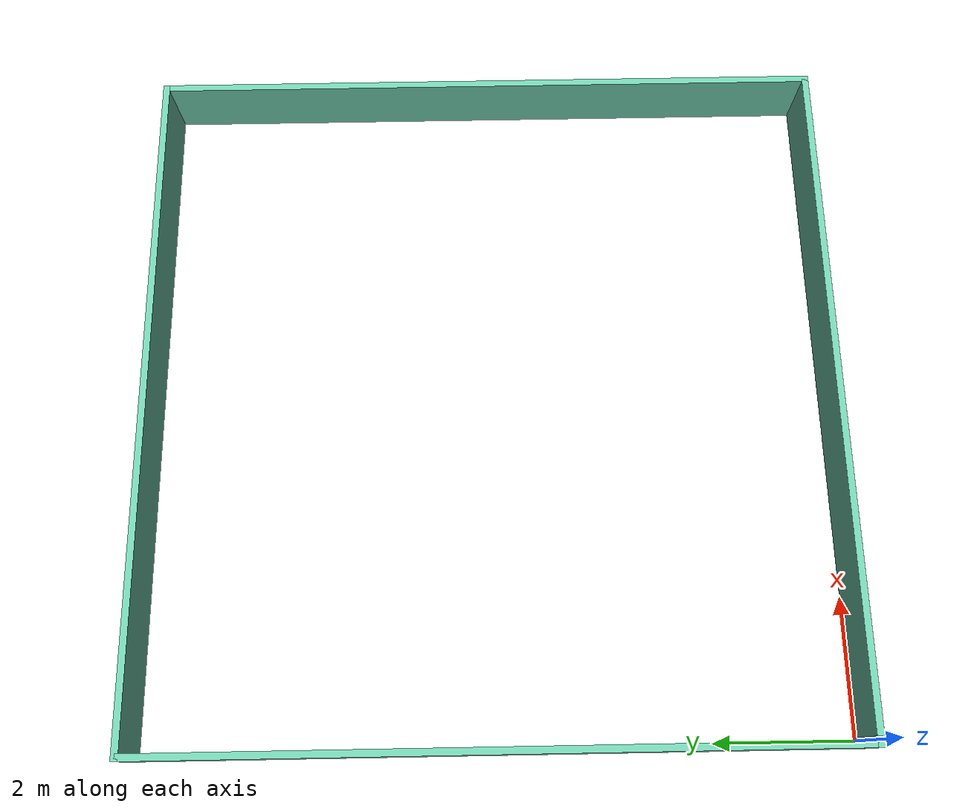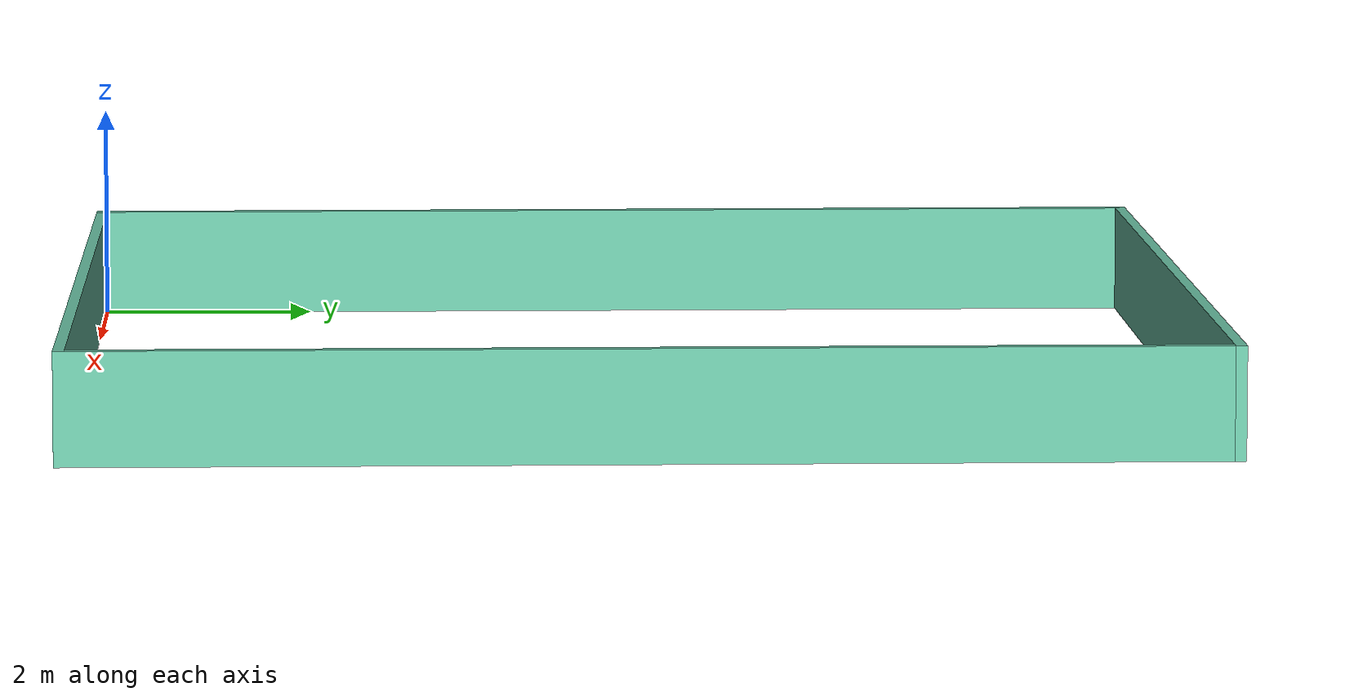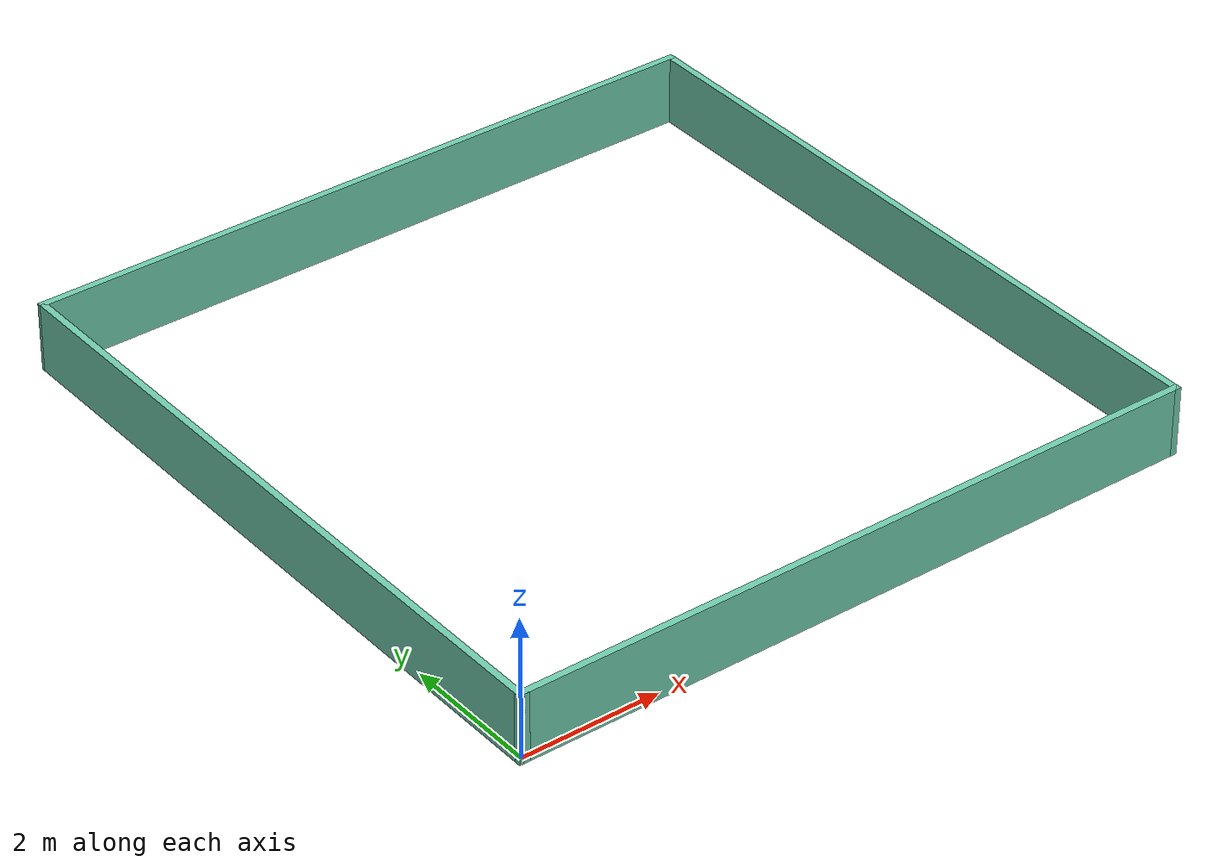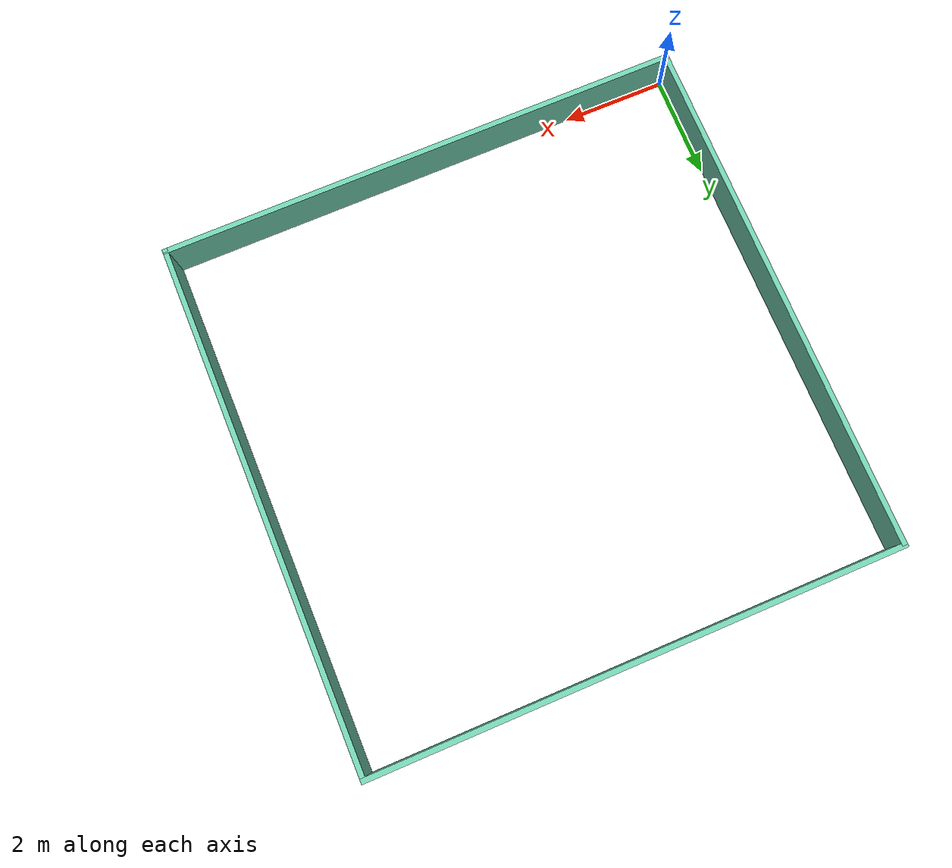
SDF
<?xml version='1.0'?>
<sdf version='1.7'>
  <model name='walls'>
    <pose>5 5 0 0 -0 0</pose>
    <link name='Wall_18'>
      <collision name='Wall_18_Collision'>
        <geometry>
          <box>
            <size>10.15 0.1 1</size>
          </box>
        </geometry>
        <pose>0 0 0.5 0 -0 0</pose>
      </collision>
      <visual name='Wall_18_Visual'>
        <pose>0 0 0.5 0 -0 0</pose>
        <geometry>
          <box>
            <size>10.15 0.1 1</size>
          </box>
        </geometry>
        <material>
          <script>
            <uri>file://media/materials/scripts/gazebo.material</uri>
            <name>Gazebo/Grey</name>
          </script>
          <ambient>0.435294 0.796078 0.67451 1</ambient>
        </material>
        <meta>
          <layer>0</layer>
        </meta>
      </visual>
      <pose>-5.05 -0.025 0 0 -0 1.5708</pose>
    </link>
    <link name='Wall_20'>
      <collision name='Wall_20_Collision'>
        <geometry>
          <box>
            <size>0.15 0.1 1</size>
          </box>
        </geometry>
        <pose>0 0 0.5 0 -0 0</pose>
      </collision>
      <visual name='Wall_20_Visual'>
        <pose>0 0 0.5 0 -0 0</pose>
        <geometry>
          <box>
            <size>0.15 0.1 1</size>
          </box>
        </geometry>
        <material>
          <script>
            <uri>file://media/materials/scripts/gazebo.material</uri>
            <name>Gazebo/Grey</name>
          </script>
          <ambient>0.435294 0.796078 0.67451 1</ambient>
        </material>
        <meta>
          <layer>0</layer>
        </meta>
      </visual>
      <pose>-5.025 -5.05 0 0 -0 0</pose>
    </link>
    <link name='Wall_22'>
      <collision name='Wall_22_Collision'>
        <geometry>
          <box>
            <size>10.15 0.1 1</size>
          </box>
        </geometry>
        <pose>0 0 0.5 0 -0 0</pose>
      </collision>
      <visual name='Wall_22_Visual'>
        <pose>0 0 0.5 0 -0 0</pose>
        <geometry>
          <box>
            <size>10.15 0.1 1</size>
          </box>
        </geometry>
        <material>
          <script>
            <uri>file://media/materials/scripts/gazebo.material</uri>
            <name>Gazebo/Grey</name>
          </script>
          <ambient>0.435294 0.796078 0.67451 1</ambient>
        </material>
        <meta>
          <layer>0</layer>
        </meta>
      </visual>
      <pose>0.025 -5.05 0 0 -0 0</pose>
    </link>
    <link name='Wall_25'>
      <collision name='Wall_25_Collision'>
        <geometry>
          <box>
            <size>10.1 0.1 1</size>
          </box>
        </geometry>
        <pose>0 0 0.5 0 -0 0</pose>
      </collision>
      <visual name='Wall_25_Visual'>
        <pose>0 0 0.5 0 -0 0</pose>
        <geometry>
          <box>
            <size>10.1 0.1 1</size>
          </box>
        </geometry>
        <material>
          <script>
            <uri>file://media/materials/scripts/gazebo.material</uri>
            <name>Gazebo/Grey</name>
          </script>
          <ambient>0.435294 0.796078 0.67451 1</ambient>
        </material>
        <meta>
          <layer>0</layer>
        </meta>
      </visual>
      <pose>5.05 -0.05 0 0 -0 1.5708</pose>
    </link>
    <link name='Wall_28'>
      <collision name='Wall_28_Collision'>
        <geometry>
          <box>
            <size>10.2 0.1 1</size>
          </box>
        </geometry>
        <pose>0 0 0.5 0 -0 0</pose>
      </collision>
      <visual name='Wall_28_Visual'>
        <pose>0 0 0.5 0 -0 0</pose>
        <geometry>
          <box>
            <size>10.2 0.1 1</size>
          </box>
        </geometry>
        <material>
          <script>
            <uri>file://media/materials/scripts/gazebo.material</uri>
            <name>Gazebo/Grey</name>
          </script>
          <ambient>0.435294 0.796078 0.67451 1</ambient>
        </material>
        <meta>
          <layer>0</layer>
        </meta>
      </visual>
      <pose>0 5.05 0 0 -0 3.14159</pose>
    </link>
    <static>1</static>
  </model>
</sdf>
